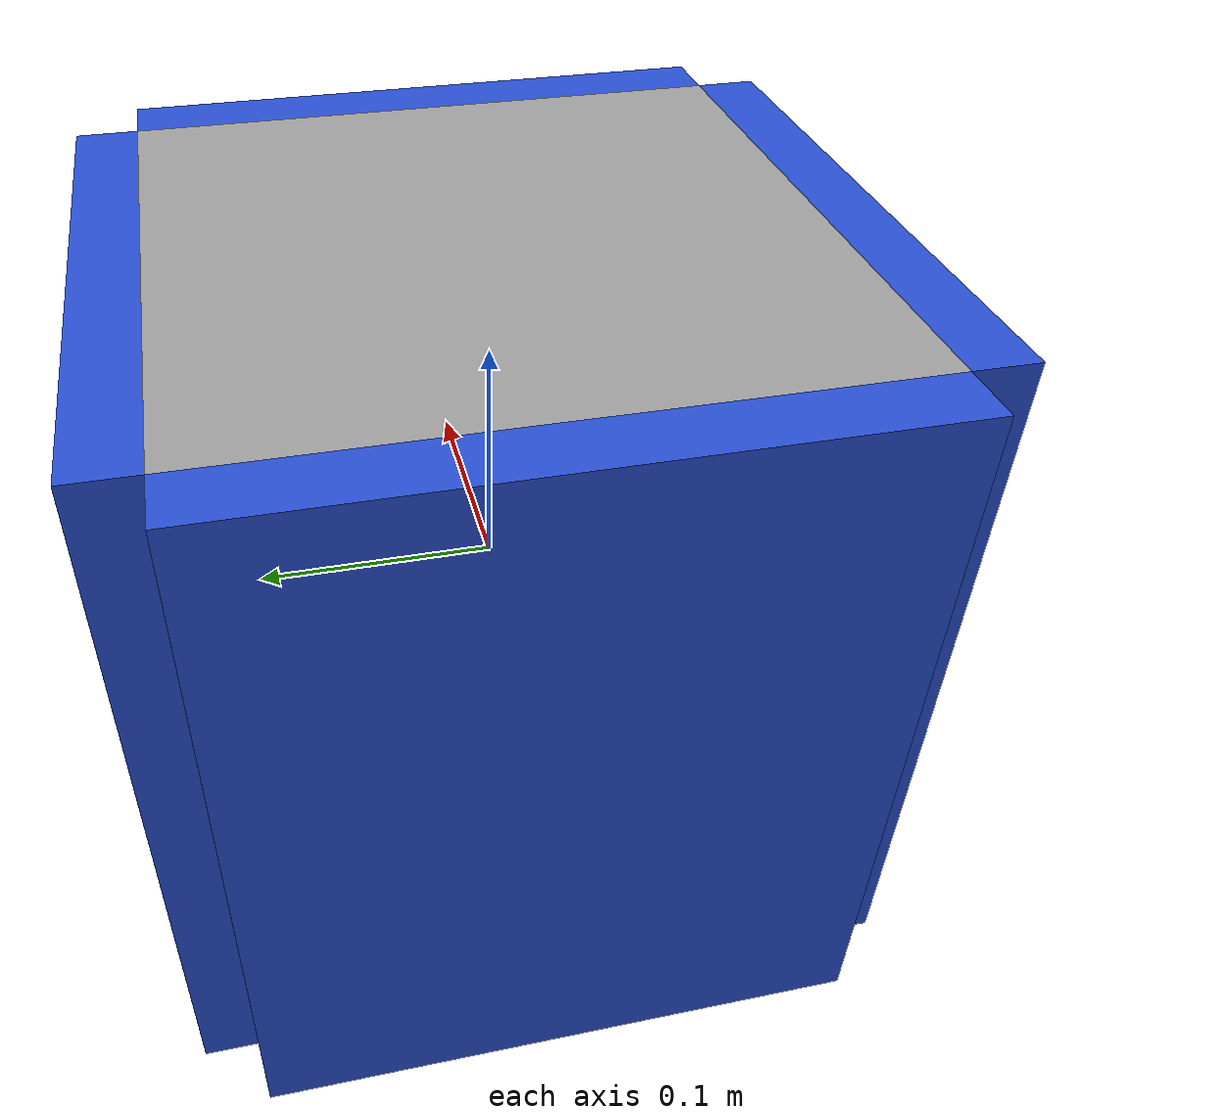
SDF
<?xml version='1.0'?>
<sdf version='1.6'>
  <model name='servo_drone'>
    <link name='link_0'>
      <inertial>
        <mass>1</mass>
        <inertia>
          <ixx>0.166667</ixx>
          <ixy>0</ixy>
          <ixz>0</ixz>
          <iyy>0.166667</iyy>
          <iyz>0</iyz>
          <izz>0.166667</izz>
        </inertia>
        <pose frame=''>0 0 0 0 -0 0</pose>
      </inertial>
      <pose frame=''>0 0 0 0 -0 0</pose>
      <gravity>1</gravity>
      <self_collide>0</self_collide>
      <kinematic>0</kinematic>
      <enable_wind>0</enable_wind>
      <visual name='visual'>
        <pose frame=''>0 0 0 0 -0 0</pose>
        <geometry>
          <box>
            <size>0.25 0.25 0.3</size>
          </box>
        </geometry>
        <material>
          <lighting>1</lighting>
          <script>
            <uri>file://media/materials/scripts/gazebo.material</uri>
            <name>Gazebo/Grey</name>
          </script>
          <shader type='pixel'>
            <normal_map>__default__</normal_map>
          </shader>
          <ambient>0.3 0.3 0.3 1</ambient>
          <diffuse>0.7 0.7 0.7 1</diffuse>
          <specular>0.01 0.01 0.01 1</specular>
          <emissive>0 0 0 1</emissive>
        </material>
        <transparency>0</transparency>
        <cast_shadows>1</cast_shadows>
      </visual>
      <collision name='collision'>
        <laser_retro>0</laser_retro>
        <max_contacts>10</max_contacts>
        <pose frame=''>0 0 0 0 -0 0</pose>
        <geometry>
          <box>
            <size>0.25 0.25 0.3</size>
          </box>
        </geometry>
        <surface>
          <friction>
            <ode>
              <mu>1</mu>
              <mu2>1</mu2>
              <fdir1>0 0 0</fdir1>
              <slip1>0</slip1>
              <slip2>0</slip2>
            </ode>
            <torsional>
              <coefficient>1</coefficient>
              <patch_radius>0</patch_radius>
              <surface_radius>0</surface_radius>
              <use_patch_radius>1</use_patch_radius>
              <ode>
                <slip>0</slip>
              </ode>
            </torsional>
          </friction>
          <bounce>
            <restitution_coefficient>0</restitution_coefficient>
            <threshold>1e+06</threshold>
          </bounce>
          <contact>
            <collide_without_contact>0</collide_without_contact>
            <collide_without_contact_bitmask>1</collide_without_contact_bitmask>
            <collide_bitmask>1</collide_bitmask>
            <ode>
              <soft_cfm>0</soft_cfm>
              <soft_erp>0.2</soft_erp>
              <kp>1e+13</kp>
              <kd>1</kd>
              <max_vel>0.01</max_vel>
              <min_depth>0</min_depth>
            </ode>
            <bullet>
              <split_impulse>1</split_impulse>
              <split_impulse_penetration_threshold>-0.01</split_impulse_penetration_threshold>
              <soft_cfm>0</soft_cfm>
              <soft_erp>0.2</soft_erp>
              <kp>1e+13</kp>
              <kd>1</kd>
            </bullet>
          </contact>
        </surface>
      </collision>
    </link>
    <link name='link_1'>
      <inertial>
        <mass>1</mass>
        <inertia>
          <ixx>0.166667</ixx>
          <ixy>0</ixy>
          <ixz>0</ixz>
          <iyy>0.166667</iyy>
          <iyz>0</iyz>
          <izz>0.166667</izz>
        </inertia>
        <pose frame=''>0 0 0 0 -0 0</pose>
      </inertial>
      <pose frame=''>0.1375 0 0 0 -0 0</pose>
      <gravity>1</gravity>
      <self_collide>0</self_collide>
      <kinematic>0</kinematic>
      <enable_wind>0</enable_wind>
      <visual name='visual'>
        <pose frame=''>0 0 0 0 -0 0</pose>
        <geometry>
          <box>
            <size>0.025 0.25 0.3</size>
          </box>
        </geometry>
        <material>
          <lighting>1</lighting>
          <script>
            <uri>file://media/materials/scripts/gazebo.material</uri>
            <name>Gazebo/Blue</name>
          </script>
          <shader type='pixel'>
            <normal_map>__default__</normal_map>
          </shader>
          <ambient>0.3 0.3 0.3 1</ambient>
          <diffuse>0.7 0.7 0.7 1</diffuse>
          <specular>0.01 0.01 0.01 1</specular>
          <emissive>0 0 0 1</emissive>
        </material>
        <transparency>0</transparency>
        <cast_shadows>1</cast_shadows>
      </visual>
      <collision name='collision'>
        <laser_retro>0</laser_retro>
        <max_contacts>10</max_contacts>
        <pose frame=''>0 0 0.005 0 -0 0</pose>
        <geometry>
          <box>
            <size>0.025 0.25 0.29</size>
          </box>
        </geometry>
        <surface>
          <friction>
            <ode>
              <mu>1</mu>
              <mu2>1</mu2>
              <fdir1>0 0 0</fdir1>
              <slip1>0</slip1>
              <slip2>0</slip2>
            </ode>
            <torsional>
              <coefficient>1</coefficient>
              <patch_radius>0</patch_radius>
              <surface_radius>0</surface_radius>
              <use_patch_radius>1</use_patch_radius>
              <ode>
                <slip>0</slip>
              </ode>
            </torsional>
          </friction>
          <bounce>
            <restitution_coefficient>0</restitution_coefficient>
            <threshold>1e+06</threshold>
          </bounce>
          <contact>
            <collide_without_contact>0</collide_without_contact>
            <collide_without_contact_bitmask>1</collide_without_contact_bitmask>
            <collide_bitmask>1</collide_bitmask>
            <ode>
              <soft_cfm>0</soft_cfm>
              <soft_erp>0.2</soft_erp>
              <kp>1e+13</kp>
              <kd>1</kd>
              <max_vel>0.01</max_vel>
              <min_depth>0</min_depth>
            </ode>
            <bullet>
              <split_impulse>1</split_impulse>
              <split_impulse_penetration_threshold>-0.01</split_impulse_penetration_threshold>
              <soft_cfm>0</soft_cfm>
              <soft_erp>0.2</soft_erp>
              <kp>1e+13</kp>
              <kd>1</kd>
            </bullet>
          </contact>
        </surface>
      </collision>
    </link>
    <link name='link_1_clone'>
      <inertial>
        <mass>1</mass>
        <inertia>
          <ixx>0.166667</ixx>
          <ixy>0</ixy>
          <ixz>0</ixz>
          <iyy>0.166667</iyy>
          <iyz>0</iyz>
          <izz>0.166667</izz>
        </inertia>
        <pose frame=''>0 0 0 0 -0 0</pose>
      </inertial>
      <pose frame=''>-0.1375 0 0 0 -0 0</pose>
      <gravity>1</gravity>
      <self_collide>0</self_collide>
      <kinematic>0</kinematic>
      <enable_wind>0</enable_wind>
      <visual name='visual'>
        <pose frame=''>0 0 0 0 -0 0</pose>
        <geometry>
          <box>
            <size>0.025 0.25 0.3</size>
          </box>
        </geometry>
        <material>
          <lighting>1</lighting>
          <script>
            <uri>file://media/materials/scripts/gazebo.material</uri>
            <name>Gazebo/Blue</name>
          </script>
          <shader type='pixel'>
            <normal_map>__default__</normal_map>
          </shader>
          <ambient>0.3 0.3 0.3 1</ambient>
          <diffuse>0.7 0.7 0.7 1</diffuse>
          <specular>0.01 0.01 0.01 1</specular>
          <emissive>0 0 0 1</emissive>
        </material>
        <transparency>0</transparency>
        <cast_shadows>1</cast_shadows>
      </visual>
      <collision name='collision'>
        <laser_retro>0</laser_retro>
        <max_contacts>10</max_contacts>
        <pose frame=''>0 0 0.005 0 -0 0</pose>
        <geometry>
          <box>
            <size>0.025 0.25 0.29</size>
          </box>
        </geometry>
        <surface>
          <friction>
            <ode>
              <mu>1</mu>
              <mu2>1</mu2>
              <fdir1>0 0 0</fdir1>
              <slip1>0</slip1>
              <slip2>0</slip2>
            </ode>
            <torsional>
              <coefficient>1</coefficient>
              <patch_radius>0</patch_radius>
              <surface_radius>0</surface_radius>
              <use_patch_radius>1</use_patch_radius>
              <ode>
                <slip>0</slip>
              </ode>
            </torsional>
          </friction>
          <bounce>
            <restitution_coefficient>0</restitution_coefficient>
            <threshold>1e+06</threshold>
          </bounce>
          <contact>
            <collide_without_contact>0</collide_without_contact>
            <collide_without_contact_bitmask>1</collide_without_contact_bitmask>
            <collide_bitmask>1</collide_bitmask>
            <ode>
              <soft_cfm>0</soft_cfm>
              <soft_erp>0.2</soft_erp>
              <kp>1e+13</kp>
              <kd>1</kd>
              <max_vel>0.01</max_vel>
              <min_depth>0</min_depth>
            </ode>
            <bullet>
              <split_impulse>1</split_impulse>
              <split_impulse_penetration_threshold>-0.01</split_impulse_penetration_threshold>
              <soft_cfm>0</soft_cfm>
              <soft_erp>0.2</soft_erp>
              <kp>1e+13</kp>
              <kd>1</kd>
            </bullet>
          </contact>
        </surface>
      </collision>
    </link>
    <link name='link_1_clone_clone'>
      <inertial>
        <mass>1</mass>
        <inertia>
          <ixx>0.166667</ixx>
          <ixy>0</ixy>
          <ixz>0</ixz>
          <iyy>0.166667</iyy>
          <iyz>0</iyz>
          <izz>0.166667</izz>
        </inertia>
        <pose frame=''>0 0 0 0 -0 0</pose>
      </inertial>
      <pose frame=''>0 -0.1375 0 0 -0 1.5708</pose>
      <gravity>1</gravity>
      <self_collide>0</self_collide>
      <kinematic>0</kinematic>
      <enable_wind>0</enable_wind>
      <visual name='visual'>
        <pose frame=''>0 0 0 0 -0 0</pose>
        <geometry>
          <box>
            <size>0.025 0.25 0.3</size>
          </box>
        </geometry>
        <material>
          <lighting>1</lighting>
          <script>
            <uri>file://media/materials/scripts/gazebo.material</uri>
            <name>Gazebo/Blue</name>
          </script>
          <shader type='pixel'>
            <normal_map>__default__</normal_map>
          </shader>
          <ambient>0.3 0.3 0.3 1</ambient>
          <diffuse>0.7 0.7 0.7 1</diffuse>
          <specular>0.01 0.01 0.01 1</specular>
          <emissive>0 0 0 1</emissive>
        </material>
        <transparency>0</transparency>
        <cast_shadows>1</cast_shadows>
      </visual>
      <collision name='collision'>
        <laser_retro>0</laser_retro>
        <max_contacts>10</max_contacts>
        <pose frame=''>0 0 0.005 0 -0 0</pose>
        <geometry>
          <box>
            <size>0.025 0.25 0.29</size>
          </box>
        </geometry>
        <surface>
          <friction>
            <ode>
              <mu>1</mu>
              <mu2>1</mu2>
              <fdir1>0 0 0</fdir1>
              <slip1>0</slip1>
              <slip2>0</slip2>
            </ode>
            <torsional>
              <coefficient>1</coefficient>
              <patch_radius>0</patch_radius>
              <surface_radius>0</surface_radius>
              <use_patch_radius>1</use_patch_radius>
              <ode>
                <slip>0</slip>
              </ode>
            </torsional>
          </friction>
          <bounce>
            <restitution_coefficient>0</restitution_coefficient>
            <threshold>1e+06</threshold>
          </bounce>
          <contact>
            <collide_without_contact>0</collide_without_contact>
            <collide_without_contact_bitmask>1</collide_without_contact_bitmask>
            <collide_bitmask>1</collide_bitmask>
            <ode>
              <soft_cfm>0</soft_cfm>
              <soft_erp>0.2</soft_erp>
              <kp>1e+13</kp>
              <kd>1</kd>
              <max_vel>0.01</max_vel>
              <min_depth>0</min_depth>
            </ode>
            <bullet>
              <split_impulse>1</split_impulse>
              <split_impulse_penetration_threshold>-0.01</split_impulse_penetration_threshold>
              <soft_cfm>0</soft_cfm>
              <soft_erp>0.2</soft_erp>
              <kp>1e+13</kp>
              <kd>1</kd>
            </bullet>
          </contact>
        </surface>
      </collision>
    </link>
    <link name='link_1_clone_clone_clone'>
      <inertial>
        <mass>1</mass>
        <inertia>
          <ixx>0.166667</ixx>
          <ixy>0</ixy>
          <ixz>0</ixz>
          <iyy>0.166667</iyy>
          <iyz>0</iyz>
          <izz>0.166667</izz>
        </inertia>
        <pose frame=''>0 0 0 0 -0 0</pose>
      </inertial>
      <pose frame=''>0 0.1375 0 0 -0 1.5708</pose>
      <gravity>1</gravity>
      <self_collide>0</self_collide>
      <kinematic>0</kinematic>
      <enable_wind>0</enable_wind>
      <visual name='visual'>
        <pose frame=''>0 0 0 0 -0 0</pose>
        <geometry>
          <box>
            <size>0.025 0.25 0.3</size>
          </box>
        </geometry>
        <material>
          <lighting>1</lighting>
          <script>
            <uri>file://media/materials/scripts/gazebo.material</uri>
            <name>Gazebo/Blue</name>
          </script>
          <shader type='pixel'>
            <normal_map>__default__</normal_map>
          </shader>
          <ambient>0.3 0.3 0.3 1</ambient>
          <diffuse>0.7 0.7 0.7 1</diffuse>
          <specular>0.01 0.01 0.01 1</specular>
          <emissive>0 0 0 1</emissive>
        </material>
        <transparency>0</transparency>
        <cast_shadows>1</cast_shadows>
      </visual>
      <collision name='collision'>
        <laser_retro>0</laser_retro>
        <max_contacts>10</max_contacts>
        <pose frame=''>0 0 0.005 0 -0 0</pose>
        <geometry>
          <box>
            <size>0.025 0.25 0.29</size>
          </box>
        </geometry>
        <surface>
          <friction>
            <ode>
              <mu>1</mu>
              <mu2>1</mu2>
              <fdir1>0 0 0</fdir1>
              <slip1>0</slip1>
              <slip2>0</slip2>
            </ode>
            <torsional>
              <coefficient>1</coefficient>
              <patch_radius>0</patch_radius>
              <surface_radius>0</surface_radius>
              <use_patch_radius>1</use_patch_radius>
              <ode>
                <slip>0</slip>
              </ode>
            </torsional>
          </friction>
          <bounce>
            <restitution_coefficient>0</restitution_coefficient>
            <threshold>1e+06</threshold>
          </bounce>
          <contact>
            <collide_without_contact>0</collide_without_contact>
            <collide_without_contact_bitmask>1</collide_without_contact_bitmask>
            <collide_bitmask>1</collide_bitmask>
            <ode>
              <soft_cfm>0</soft_cfm>
              <soft_erp>0.2</soft_erp>
              <kp>1e+13</kp>
              <kd>1</kd>
              <max_vel>0.01</max_vel>
              <min_depth>0</min_depth>
            </ode>
            <bullet>
              <split_impulse>1</split_impulse>
              <split_impulse_penetration_threshold>-0.01</split_impulse_penetration_threshold>
              <soft_cfm>0</soft_cfm>
              <soft_erp>0.2</soft_erp>
              <kp>1e+13</kp>
              <kd>1</kd>
            </bullet>
          </contact>
        </surface>
      </collision>
    </link>
    <joint name='link_0_JOINT_0' type='revolute'>
      <parent>link_0</parent>
      <child>link_1</child>
      <pose frame=''>-0.0125 0 0.15 0 -0 0</pose>
      <axis>
        <xyz>0 -1 0</xyz>
        <use_parent_model_frame>0</use_parent_model_frame>
        <limit>
          <lower>-0</lower>
          <upper>1.5708</upper>
          <effort>-1</effort>
          <velocity>-1</velocity>
        </limit>
        <dynamics>
          <spring_reference>0</spring_reference>
          <spring_stiffness>0</spring_stiffness>
          <damping>0</damping>
          <friction>0</friction>
        </dynamics>
      </axis>
      <physics>
        <ode>
          <limit>
            <cfm>0</cfm>
            <erp>0.2</erp>
          </limit>
          <suspension>
            <cfm>0</cfm>
            <erp>0.2</erp>
          </suspension>
        </ode>
      </physics>
    </joint>
    <joint name='link_0_JOINT_1' type='revolute'>
      <parent>link_0</parent>
      <child>link_1_clone</child>
      <pose frame=''>0.0125 0 0.15 0 -0 0</pose>
      <axis>
        <xyz>0 1 0</xyz>
        <use_parent_model_frame>0</use_parent_model_frame>
        <limit>
          <lower>0</lower>
          <upper>1.5708</upper>
          <effort>-1</effort>
          <velocity>-1</velocity>
        </limit>
        <dynamics>
          <spring_reference>0</spring_reference>
          <spring_stiffness>0</spring_stiffness>
          <damping>0</damping>
          <friction>0</friction>
        </dynamics>
      </axis>
      <physics>
        <ode>
          <limit>
            <cfm>0</cfm>
            <erp>0.2</erp>
          </limit>
          <suspension>
            <cfm>0</cfm>
            <erp>0.2</erp>
          </suspension>
        </ode>
      </physics>
    </joint>
    <joint name='link_0_JOINT_2' type='revolute'>
      <parent>link_0</parent>
      <child>link_1_clone_clone</child>
      <pose frame=''>0.0125 0 0.15 0 -0 0</pose>
      <axis>
        <xyz>0 1 0</xyz>
        <use_parent_model_frame>0</use_parent_model_frame>
        <limit>
          <lower>0</lower>
          <upper>1.5708</upper>
          <effort>-1</effort>
          <velocity>-1</velocity>
        </limit>
        <dynamics>
          <spring_reference>0</spring_reference>
          <spring_stiffness>0</spring_stiffness>
          <damping>0</damping>
          <friction>0</friction>
        </dynamics>
      </axis>
      <physics>
        <ode>
          <limit>
            <cfm>0</cfm>
            <erp>0.2</erp>
          </limit>
          <suspension>
            <cfm>0</cfm>
            <erp>0.2</erp>
          </suspension>
        </ode>
      </physics>
    </joint>
    <joint name='link_0_JOINT_3' type='revolute'>
      <parent>link_0</parent>
      <child>link_1_clone_clone_clone</child>
      <pose frame=''>-0.0125 0 0.15 0 -0 0</pose>
      <axis>
        <xyz>0 -1 0</xyz>
        <use_parent_model_frame>0</use_parent_model_frame>
        <limit>
          <lower>0</lower>
          <upper>1.5708</upper>
          <effort>-1</effort>
          <velocity>-1</velocity>
        </limit>
        <dynamics>
          <spring_reference>0</spring_reference>
          <spring_stiffness>0</spring_stiffness>
          <damping>0</damping>
          <friction>0</friction>
        </dynamics>
      </axis>
      <physics>
        <ode>
          <limit>
            <cfm>0</cfm>
            <erp>0.2</erp>
          </limit>
          <suspension>
            <cfm>0</cfm>
            <erp>0.2</erp>
          </suspension>
        </ode>
      </physics>
    </joint>
    <static>0</static>
    <allow_auto_disable>1</allow_auto_disable>
  </model>
</sdf>
